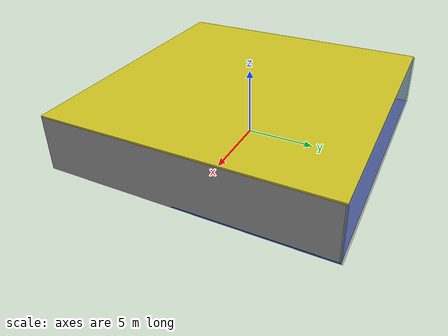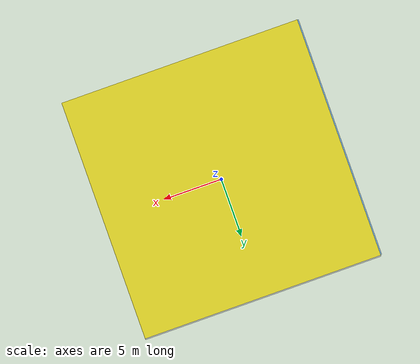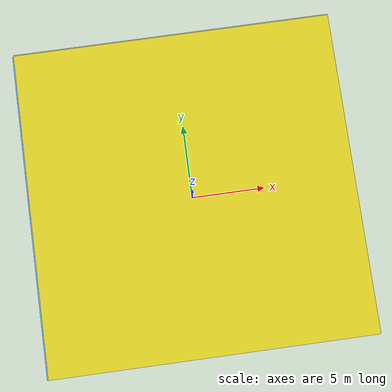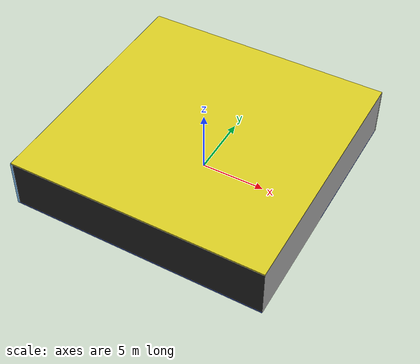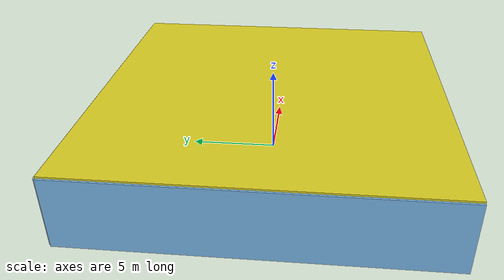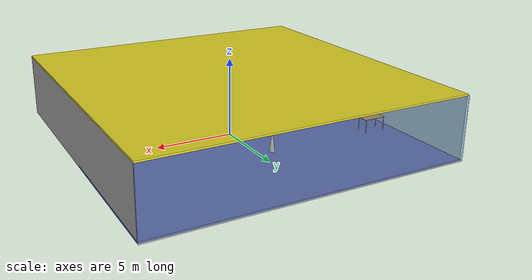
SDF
<sdf version="1.4">
 <world name="default">
  <physics type="ode">
   <max_step_size>0.001</max_step_size>
   <real_time_factor>1</real_time_factor>
   <real_time_update_rate>1000</real_time_update_rate>
   <gravity>0 0 -9.8</gravity>
  </physics>
  <scene><ambient>0.4 0.4 0.4 1</ambient><background>0.7 0.7 0.7 1</background><shadows>1</shadows></scene>
  <model name="Surrounding">
   <static>1</static>
   <link name="Ceiling">
    <collision name="Ceiling_Collision"><geometry><box><size>20 20 0.1</size></box></geometry></collision>
    <visual name="Ceiling_Visual">
     <geometry><box><size>20 20 0.1</size></box></geometry>
     <material>
      <script><uri>file://media/materials/scripts/gazebo.material</uri><name>Gazebo/Yellow</name></script>
     </material>
    </visual>
    <pose>0 0 4.05 0 0 0</pose>
   </link>
   <link name="Wall_South">
    <collision name="Wall_South_Collision">
     <geometry><box><size>20 0 4</size></box></geometry>
     <pose>0 0 2 0 -0 0</pose>
    </collision>
    <visual name="Wall_South_Visual">
     <pose>0 0 2 0 -0 0</pose>
     <geometry><box><size>20 0 4</size></box></geometry>
     <material>
      <script><uri>file://media/materials/scripts/gazebo.material</uri><name>Gazebo/FlatBlack</name></script>
     </material>
    </visual>
    <velocity_decay><linear>0</linear><angular>0</angular></velocity_decay>
    <pose>0 -10 0 0 -0 0</pose>
   </link>
   <link name="Wall_East">
    <collision name="Wall_21_Collision">
     <geometry><box><size>20 0 4</size></box></geometry>
     <pose>0 0 2 0 -0 0</pose>
    </collision>
    <visual name="Wall_21_Visual">
     <pose>0 0 2 0 -0 0</pose>
     <geometry><box><size>20 0 4</size></box></geometry>
     <material>
      <script><uri>file://media/materials/scripts/gazebo.material</uri><name>Gazebo/GreyGradientSky</name></script>
     </material>
    </visual>
    <velocity_decay><linear>0</linear><angular>0</angular></velocity_decay>
    <pose>10 0 0 0 -0 1.5708</pose>
   </link>
   <link name="Wall_North">
    <collision name="Wall_22_Collision">
     <geometry><box><size>20 0.2 4</size></box></geometry>
     <pose>0 0 2 0 -0 0</pose>
    </collision>
    <visual name="Wall_22_Visual">
     <pose>0 0 2 0 -0 0</pose>
     <geometry><box><size>20 0.2 4</size></box></geometry>
     <material>
      <script><uri>file://media/materials/scripts/gazebo.material</uri><name>Gazebo/GreyTransparent</name></script>
     </material>
    </visual>
    <velocity_decay><linear>0</linear><angular>0</angular></velocity_decay>
    <pose>0 10 0 0 -0 0</pose>
   </link>
   <link name="Wall_West">
    <collision name="Wall_23_Collision">
     <geometry><box><size>20 0.2 4</size></box></geometry>
     <pose>0 0 2 0 -0 0</pose>
    </collision>
    <visual name="Wall_23_Visual">
     <pose>0 0 2 0 -0 0</pose>
     <geometry><box><size>20 0.2 4</size></box></geometry>
     <material>
      <script><uri>file://media/materials/scripts/gazebo.material</uri><name>Gazebo/SkyBlue</name></script>
     </material>
    </visual>
    <velocity_decay><linear>0</linear><angular>0</angular></velocity_decay>
    <pose>-10 0 0 0 0 -1.5708</pose>
   </link>
   <link name="Ground_link">
    <collision name="collision">
     <pose>0 0 .05 0 -0 0</pose>
     <geometry><box><size>20 20 0.1</size></box></geometry>
    </collision>
    <visual name="visual">
     <pose>0 0 .05 0 -0 0</pose>
     <geometry><box><size>20 20 0.1</size></box></geometry>
     <material>
      <script><uri>file://media/materials/scripts/gazebo.material</uri><name>Gazebo/BlueGlow</name></script>
     </material>
    </visual>
   </link>
   <static>1</static>
  </model>
  <spherical_coordinates>
   <surface_model>EARTH_WGS84</surface_model>
   <latitude_deg>0</latitude_deg>
   <longitude_deg>0</longitude_deg>
   <elevation>0</elevation>
   <heading_deg>0</heading_deg>
  </spherical_coordinates>
  <light name="lightball_0" type="diffuse">
   <diffuse>0.8 0.8 0.8 1</diffuse>
   <specular>0.2 0.2 0.2 1</specular>
   <attenuation>
    <range>100</range>
    <constant>0.7</constant>
    <linear>0.01</linear>
    <quadratic>0.001</quadratic>
   </attenuation>
   <direction>-0.5 0.1 -0.9</direction>
   <pose>6.25837317923 5.21830610664 0.968201060429 0 0 0</pose>
  </light>
  <light name="lightball_1" type="diffuse">
   <diffuse>0.8 0.8 0.8 1</diffuse>
   <specular>0.2 0.2 0.2 1</specular>
   <attenuation>
    <range>100</range>
    <constant>0.7</constant>
    <linear>0.01</linear>
    <quadratic>0.001</quadratic>
   </attenuation>
   <direction>-0.5 0.1 -0.9</direction>
   <pose>4.26001673913 4.85017556497 2.05715137126 0 0 0</pose>
  </light>
  <light name="lightball_2" type="diffuse">
   <diffuse>0.8 0.8 0.8 1</diffuse>
   <specular>0.2 0.2 0.2 1</specular>
   <attenuation>
    <range>100</range>
    <constant>0.7</constant>
    <linear>0.01</linear>
    <quadratic>0.001</quadratic>
   </attenuation>
   <direction>-0.5 0.1 -0.9</direction>
   <pose>-5.39260084845 8.32932157828 1.69842257579 0 0 0</pose>
  </light>
  <light name="lightball_3" type="diffuse">
   <diffuse>0.8 0.8 0.8 1</diffuse>
   <specular>0.2 0.2 0.2 1</specular>
   <attenuation>
    <range>100</range>
    <constant>0.7</constant>
    <linear>0.01</linear>
    <quadratic>0.001</quadratic>
   </attenuation>
   <direction>-0.5 0.1 -0.9</direction>
   <pose>7.54206776148 9.55334297079 2.89335710104 0 0 0</pose>
  </light>
  <include>
   <uri>model://construction_cone</uri>
   <pose>-6.9012859679 -2.62450819453 0 0 0 0.301373751191</pose>
  </include>
  <include><uri>model://table</uri><pose>-8.33641759531 3.80507826445 0 0 0 3.12681237107</pose></include>
  <include>
   <uri>model://construction_cone</uri>
   <pose>-0.82851167565 3.85606000691 0 0 0 1.50622408444</pose>
  </include>
  <include><uri>model://table</uri><pose>1.86047344236 -5.07199222452 0 0 0 2.78368452557</pose></include>
  <include><uri>model://table</uri><pose>1.5423564492 -1.98055284819 0 0 0 0.830206213864</pose></include>
 </world>
</sdf>

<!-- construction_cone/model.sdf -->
<sdf version="1.5">
  <model name="Construction Cone">
    <link name="link">
      <collision name="collision">
        <geometry>
          <mesh>
            <scale>10 10 10</scale>
            <uri>file://isr-testbed/construction_cone/meshes/construction_cone.dae</uri>
          </mesh>
        </geometry>
      </collision>
      <visual name="visual">
        <geometry>
          <mesh>
            <scale>10 10 10</scale>
            <uri>file://isr-testbed/construction_cone/meshes/construction_cone.dae</uri>
          </mesh>
        </geometry>
      </visual>
    </link>
  </model>
</sdf>

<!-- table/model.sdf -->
<sdf version="1.5">
  <model name="table">
    <static>true</static>
    <link name="link">
      <collision name="surface">
        <pose>0 0 1.0 0 0 0</pose>
        <geometry>
          <box>
            <size>1.5 0.8 0.03</size>
          </box>
        </geometry>
        <surface>
          <friction>
            <ode>
              <mu>0.6</mu>
              <mu2>0.6</mu2>
            </ode>
          </friction>
        </surface>
      </collision>
      <visual name="visual1">
        <pose>0 0 1.0 0 0 0</pose>
        <geometry>
          <box>
            <size>1.5 0.8 0.03</size>
          </box>
        </geometry>
        <material>
          <script>
            <uri>model://media/materials/scripts/gazebo.material</uri>
            <name>Gazebo/Wood</name>
          </script>
        </material>
      </visual>
      <collision name="front_left_leg">
        <pose>0.68 0.38 0.5 0 0 0</pose>
        <geometry>
          <cylinder>
            <radius>0.02</radius>
            <length>1.0</length>
          </cylinder>
        </geometry>
      </collision>
      <visual name="front_left_leg">
        <pose>0.68 0.38 0.5 0 0 0</pose>
        <geometry>
          <cylinder>
            <radius>0.02</radius>
            <length>1.0</length>
          </cylinder>
        </geometry>
        <material>
          <script>
            <uri>model://media/materials/scripts/gazebo.material</uri>
            <name>Gazebo/Grey</name>
          </script>
        </material>
      </visual>
      <collision name="front_right_leg">
        <pose>0.68 -0.38 0.5 0 0 0</pose>
        <geometry>
          <cylinder>
            <radius>0.02</radius>
            <length>1.0</length>
          </cylinder>
        </geometry>
      </collision>
      <visual name="front_right_leg">
        <pose>0.68 -0.38 0.5 0 0 0</pose>
        <geometry>
          <cylinder>
            <radius>0.02</radius>
            <length>1.0</length>
          </cylinder>
        </geometry>
        <material>
          <script>
            <uri>model://media/materials/scripts/gazebo.material</uri>
            <name>Gazebo/Grey</name>
          </script>
        </material>
      </visual>
      <collision name="back_right_leg">
        <pose>-0.68 -0.38 0.5 0 0 0</pose>
        <geometry>
          <cylinder>
            <radius>0.02</radius>
            <length>1.0</length>
          </cylinder>
        </geometry>
      </collision>
      <visual name="back_right_leg">
        <pose>-0.68 -0.38 0.5 0 0 0</pose>
        <geometry>
          <cylinder>
            <radius>0.02</radius>
            <length>1.0</length>
          </cylinder>
        </geometry>
        <material>
          <script>
            <uri>model://media/materials/scripts/gazebo.material</uri>
            <name>Gazebo/Grey</name>
          </script>
        </material>
      </visual>
      <collision name="back_left_leg">
        <pose>-0.68 0.38 0.5 0 0 0</pose>
        <geometry>
          <cylinder>
            <radius>0.02</radius>
            <length>1.0</length>
          </cylinder>
        </geometry>
      </collision>
      <visual name="back_left_leg">
        <pose>-0.68 0.38 0.5 0 0 0</pose>
        <geometry>
          <cylinder>
            <radius>0.02</radius>
            <length>1.0</length>
          </cylinder>
        </geometry>
        <material>
          <script>
            <uri>model://media/materials/scripts/gazebo.material</uri>
            <name>Gazebo/Grey</name>
          </script>
        </material>
      </visual>
    </link>
  </model>
</sdf>
